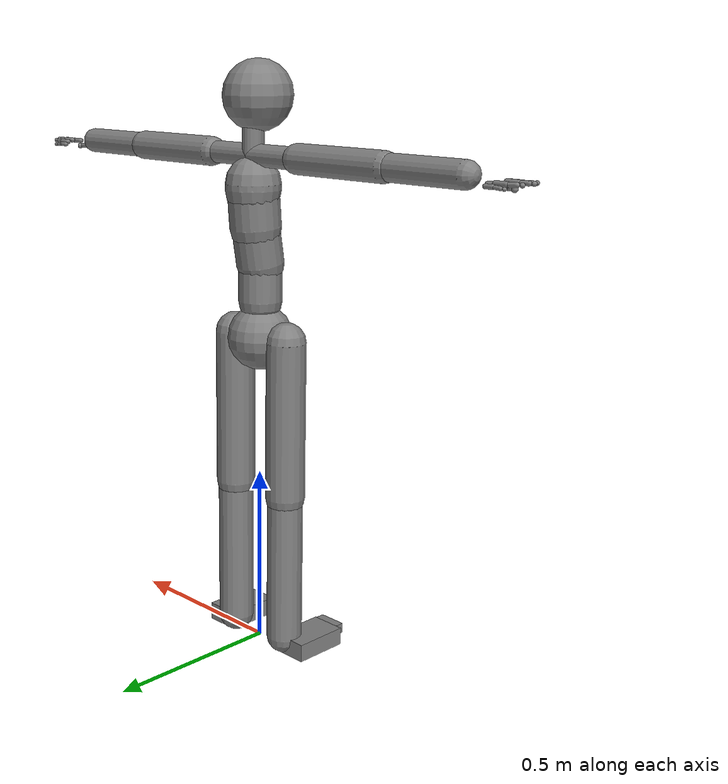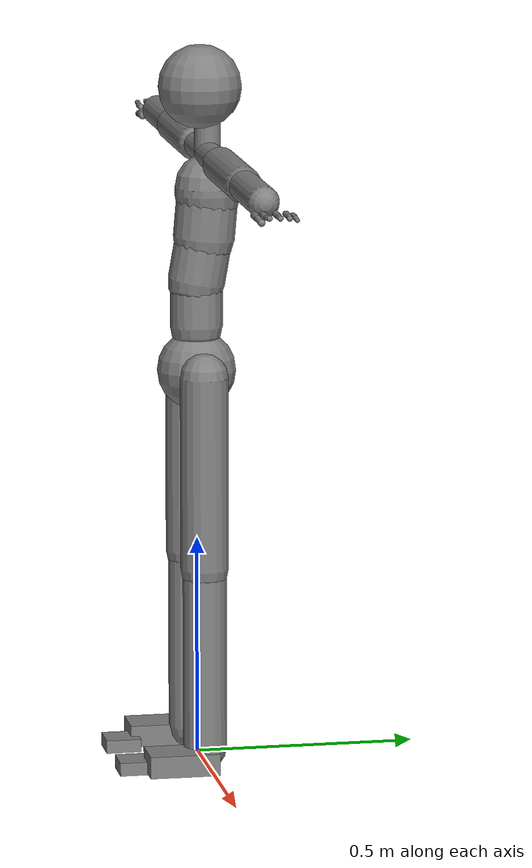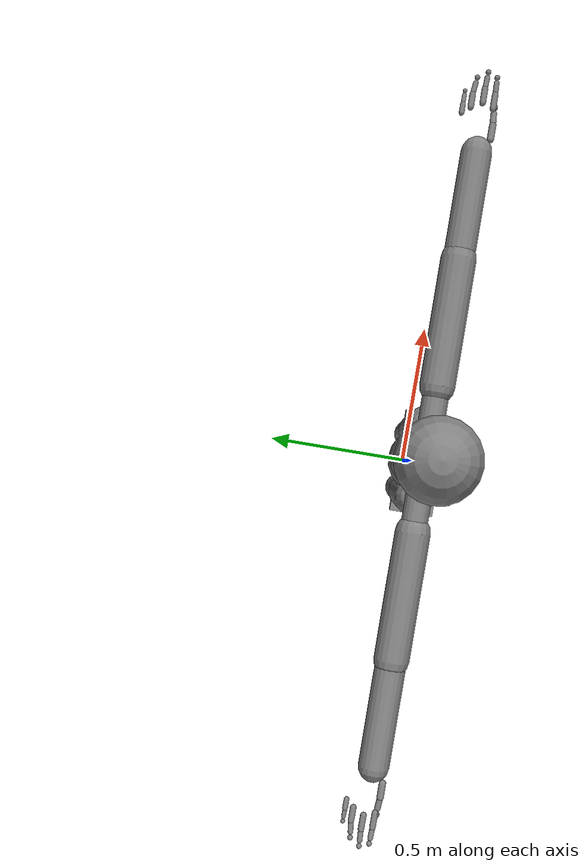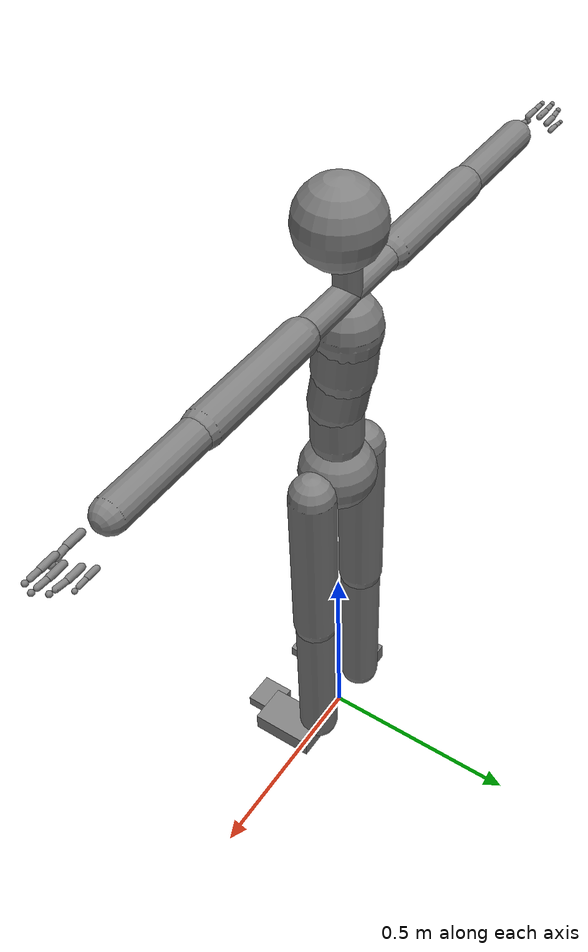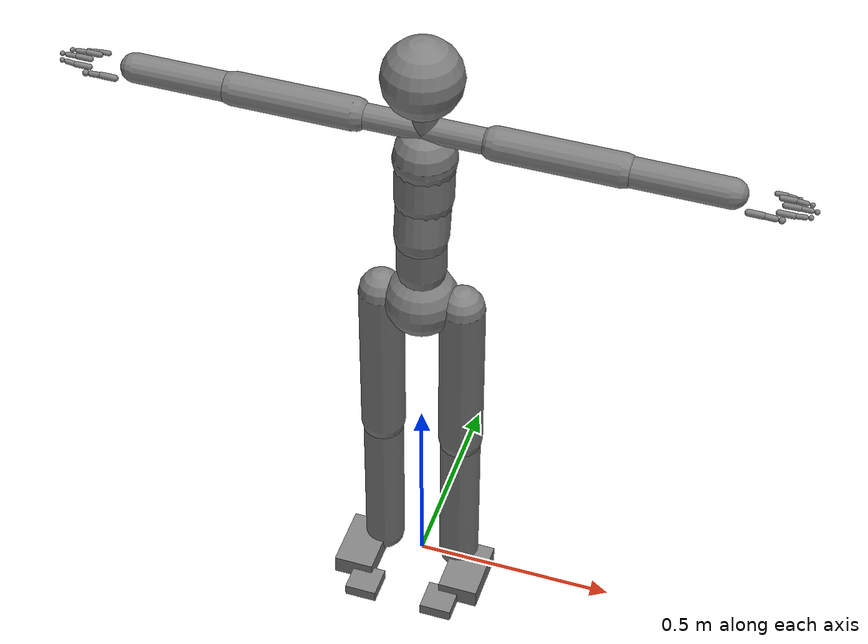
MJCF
<mujoco model="movinman_v3">
  <compiler angle="radian"/>

  <default>
    <motor ctrlrange="-1 1" ctrllimited="true"/>
    <default class="body">
      <geom condim="1" friction="1.0 0.05 0.05" solimp=".9 .99 .003" solref=".015 1"/>
      <joint limited="true" solimplimit="0 .99 .01" armature=".01"/>
    </default>
    <default class="hand">
      <geom condim="1" friction="1.0 0.05 0.05" solimp=".9 .99 .003" solref=".015 1"/>
      <joint limited="true" solimplimit="0 .99 .01" armature=".005"/>
    </default>
  </default>

  <worldbody>
    <body name="Hips" pos="0 0 0.8906" childclass="body">
      <freejoint name="root"/>
      <geom name="Hips" type="sphere" size=".09" density="1000"/>

      <!-- Spine chain -->
      <body name="Spine" pos="0 0 0.100574">
        <joint name="Spine_x" type="hinge" axis="1 0 0" range="-3.14159 3.14159"/>
        <joint name="Spine_y" type="hinge" axis="0 1 0" range="-3.14159 3.14159"/>
        <joint name="Spine_z" type="hinge" axis="0 0 1" range="-3.14159 3.14159"/>
        <geom name="Spine" type="capsule" fromto="0 0 0 0 0 0.101482" size="0.06" density="1000"/>

        <body name="Spine1" pos="0 0 0.101482">
          <joint name="Spine1_x" type="hinge" axis="1 0 0" range="-3.14159 3.14159"/>
          <joint name="Spine1_y" type="hinge" axis="0 1 0" range="-3.14159 3.14159"/>
          <joint name="Spine1_z" type="hinge" axis="0 0 1" range="-3.14159 3.14159"/>
          <geom name="Spine1" type="capsule" fromto="0 0 0 0 0.017544 0.099501" size="0.065" density="1000"/>

          <body name="Spine2" pos="0 0.017544 0.099501">
            <joint name="Spine2_x" type="hinge" axis="1 0 0" range="-3.14159 3.14159"/>
            <joint name="Spine2_y" type="hinge" axis="0 1 0" range="-3.14159 3.14159"/>
            <joint name="Spine2_z" type="hinge" axis="0 0 1" range="-3.14159 3.14159"/>
            <geom name="Spine2" type="capsule" fromto="0 0 0 0 0.008805 0.100647" size="0.07" density="1000"/>

            <body name="Spine3" pos="0 0.008805 0.100647">
              <joint name="Spine3_x" type="hinge" axis="1 0 0" range="-3.14159 3.14159"/>
              <joint name="Spine3_y" type="hinge" axis="0 1 0" range="-3.14159 3.14159"/>
              <joint name="Spine3_z" type="hinge" axis="0 0 1" range="-3.14159 3.14159"/>
              <geom name="Spine3" type="capsule" fromto="0 0 0 0 0 0.015928" size="0.075" density="1000"/>

              <!-- Neck/Head -->
              <body name="Neck" pos="0 0 0.090928">
                <joint name="Neck_x" type="hinge" axis="1 0 0" range="-3.14159 3.14159"/>
                <joint name="Neck_y" type="hinge" axis="0 1 0" range="-3.14159 3.14159"/>
                <joint name="Neck_z" type="hinge" axis="0 0 1" range="-3.14159 3.14159"/>
                <geom name="Neck" type="capsule" fromto="0 0 0 0 0 0.085869" size=".03" density="1000"/>

                <body name="Neck1" pos="0 0 0.085869">
                  <joint name="Neck1_x" type="hinge" axis="1 0 0" range="-3.14159 3.14159"/>
                  <joint name="Neck1_y" type="hinge" axis="0 1 0" range="-3.14159 3.14159"/>
                  <joint name="Neck1_z" type="hinge" axis="0 0 1" range="-3.14159 3.14159"/>
                  <geom name="Neck1" type="capsule" fromto="0 0 0 0 -0.016945 0.043697" size=".03" density="1000"/>

                  <body name="Head" pos="0 -0.016945 0.043697">
                    <joint name="Head_x" type="hinge" axis="1 0 0" range="-3.14159 3.14159"/>
                    <joint name="Head_y" type="hinge" axis="0 1 0" range="-3.14159 3.14159"/>
                    <joint name="Head_z" type="hinge" axis="0 0 1" range="-3.14159 3.14159"/>
                    <geom name="Head" type="sphere" pos="0 0 0.023434" size=".095" density="1000"/>
                  </body>
                </body>
              </body>

              <!-- Right arm chain -->
              <body name="RightShoulder" pos="0 0 0.090928">
                <joint name="RightShoulder_x" type="hinge" axis="1 0 0" range="-3.14159 3.14159"/>
                <joint name="RightShoulder_y" type="hinge" axis="0 1 0" range="-3.14159 3.14159"/>
                <joint name="RightShoulder_z" type="hinge" axis="0 0 1" range="-3.14159 3.14159"/>
                <geom name="RightShoulder" type="capsule" fromto="0 0 0 -0.16468 0 0" size=".03" density="1000"/>

                <body name="RightArm" pos="-0.16468 0 0">
                  <joint name="RightArm_x" type="hinge" axis="1 0 0" range="-3.14159 3.14159"/>
                  <joint name="RightArm_y" type="hinge" axis="0 1 0" range="-3.14159 3.14159"/>
                  <joint name="RightArm_z" type="hinge" axis="0 0 1" range="-3.14159 3.14159"/>
                  <geom name="RightArm" type="capsule" fromto="0 0 0 -0.288998 0 0" size=".04" density="1000"/>

                  <body name="RightForeArm" pos="-0.288998 0 0">
                    <joint name="RightForeArm_x" type="hinge" axis="1 0 0" range="-3.14159 3.14159"/>
                    <joint name="RightForeArm_y" type="hinge" axis="0 1 0" range="-3.14159 3.14159"/>
                    <joint name="RightForeArm_z" type="hinge" axis="0 0 1" range="-3.14159 3.14159"/>
                    <geom name="RightForeArm" type="capsule" fromto="0 0 0 -0.240378 0 0" size=".035" density="1000"/>

                    <body name="RightHand" pos="-0.240378 0 0">
                      <joint name="RightHand_x" type="hinge" axis="1 0 0" range="-3.14159 3.14159"/>
                      <joint name="RightHand_y" type="hinge" axis="0 1 0" range="-3.14159 3.14159"/>
                      <joint name="RightHand_z" type="hinge" axis="0 0 1" range="-3.14159 3.14159"/>
                      <geom name="RightHand" type="sphere" size=".03" density="1000"/>

                      <!-- Right hand fingers -->
                      <body name="RightHandThumb1" pos="-0.041726 -0.027704 -0.020077" childclass="hand">
                        <joint name="RightHandThumb1_x" type="hinge" axis="1 0 0" range="-3.14159 3.14159"/>
                        <joint name="RightHandThumb1_y" type="hinge" axis="0 1 0" range="-3.14159 3.14159"/>
                        <joint name="RightHandThumb1_z" type="hinge" axis="0 0 1" range="-3.14159 3.14159"/>
                        <geom name="RightHandThumb1" type="capsule" fromto="0 0 0 -0.032269 -0.000022 0" size=".008" density="1000"/>

                        <body name="RightHandThumb2" pos="-0.032269 -0.000022 0">
                          <joint name="RightHandThumb2_x" type="hinge" axis="1 0 0" range="-3.14159 3.14159"/>
                          <joint name="RightHandThumb2_y" type="hinge" axis="0 1 0" range="-3.14159 3.14159"/>
                          <joint name="RightHandThumb2_z" type="hinge" axis="0 0 1" range="-3.14159 3.14159"/>
                          <geom name="RightHandThumb2" type="capsule" fromto="0 0 0 -0.027413 0.001777 -0.002918" size=".007" density="1000"/>

                          <body name="RightHandThumb3" pos="-0.027413 0.001777 -0.002918">
                            <joint name="RightHandThumb3_x" type="hinge" axis="1 0 0" range="-3.14159 3.14159"/>
                            <joint name="RightHandThumb3_y" type="hinge" axis="0 1 0" range="-3.14159 3.14159"/>
                            <joint name="RightHandThumb3_z" type="hinge" axis="0 0 1" range="-3.14159 3.14159"/>
                            <geom name="RightHandThumb3" type="sphere" pos="-0.013706 0.000888 -0.001459" size=".008" density="1000"/>
                          </body>
                        </body>
                      </body>

                      <body name="RightHandIndex1" pos="-0.106087 -0.021057 -0.008585" childclass="hand">
                        <joint name="RightHandIndex1_x" type="hinge" axis="1 0 0" range="-3.14159 3.14159"/>
                        <joint name="RightHandIndex1_y" type="hinge" axis="0 1 0" range="-3.14159 3.14159"/>
                        <joint name="RightHandIndex1_z" type="hinge" axis="0 0 1" range="-3.14159 3.14159"/>
                        <geom name="RightHandIndex1" type="capsule" fromto="0 0 0 -0.033573 0.000221 0" size=".007" density="1000"/>

                        <body name="RightHandIndex2" pos="-0.033573 0.000221 0">
                          <joint name="RightHandIndex2_x" type="hinge" axis="1 0 0" range="-3.14159 3.14159"/>
                          <joint name="RightHandIndex2_y" type="hinge" axis="0 1 0" range="-3.14159 3.14159"/>
                          <joint name="RightHandIndex2_z" type="hinge" axis="0 0 1" range="-3.14159 3.14159"/>
                          <geom name="RightHandIndex2" type="capsule" fromto="0 0 0 -0.023509 0.001179 0.00164" size=".006" density="1000"/>

                          <body name="RightHandIndex3" pos="-0.023509 0.001179 0.00164">
                            <joint name="RightHandIndex3_x" type="hinge" axis="1 0 0" range="-3.14159 3.14159"/>
                            <joint name="RightHandIndex3_y" type="hinge" axis="0 1 0" range="-3.14159 3.14159"/>
                            <joint name="RightHandIndex3_z" type="hinge" axis="0 0 1" range="-3.14159 3.14159"/>
                            <geom name="RightHandIndex3" type="sphere" pos="-0.011754 0.000589 0.00082" size=".006" density="1000"/>
                          </body>
                        </body>
                      </body>

                      <body name="RightHandMiddle1" pos="-0.11422 0.003961 -0.005851" childclass="hand">
                        <joint name="RightHandMiddle1_x" type="hinge" axis="1 0 0" range="-3.14159 3.14159"/>
                        <joint name="RightHandMiddle1_y" type="hinge" axis="0 1 0" range="-3.14159 3.14159"/>
                        <joint name="RightHandMiddle1_z" type="hinge" axis="0 0 1" range="-3.14159 3.14159"/>
                        <geom name="RightHandMiddle1" type="capsule" fromto="0 0 0 -0.032162 0.000195 0" size=".007" density="1000"/>

                        <body name="RightHandMiddle2" pos="-0.032162 0.000195 0">
                          <joint name="RightHandMiddle2_x" type="hinge" axis="1 0 0" range="-3.14159 3.14159"/>
                          <joint name="RightHandMiddle2_y" type="hinge" axis="0 1 0" range="-3.14159 3.14159"/>
                          <joint name="RightHandMiddle2_z" type="hinge" axis="0 0 1" range="-3.14159 3.14159"/>
                          <geom name="RightHandMiddle2" type="capsule" fromto="0 0 0 -0.024862 -0.001192 0.000421" size=".006" density="1000"/>

                          <body name="RightHandMiddle3" pos="-0.024862 -0.001192 0.000421">
                            <joint name="RightHandMiddle3_x" type="hinge" axis="1 0 0" range="-3.14159 3.14159"/>
                            <joint name="RightHandMiddle3_y" type="hinge" axis="0 1 0" range="-3.14159 3.14159"/>
                            <joint name="RightHandMiddle3_z" type="hinge" axis="0 0 1" range="-3.14159 3.14159"/>
                            <geom name="RightHandMiddle3" type="sphere" pos="-0.012431 -0.000596 0.00021" size=".006" density="1000"/>
                          </body>
                        </body>
                      </body>

                      <body name="RightHandRing1" pos="-0.101918 0.028942 -0.008948" childclass="hand">
                        <joint name="RightHandRing1_x" type="hinge" axis="1 0 0" range="-3.14159 3.14159"/>
                        <joint name="RightHandRing1_y" type="hinge" axis="0 1 0" range="-3.14159 3.14159"/>
                        <joint name="RightHandRing1_z" type="hinge" axis="0 0 1" range="-3.14159 3.14159"/>
                        <geom name="RightHandRing1" type="capsule" fromto="0 0 0 -0.030022 0.000157 0" size=".007" density="1000"/>

                        <body name="RightHandRing2" pos="-0.030022 0.000157 0">
                          <joint name="RightHandRing2_x" type="hinge" axis="1 0 0" range="-3.14159 3.14159"/>
                          <joint name="RightHandRing2_y" type="hinge" axis="0 1 0" range="-3.14159 3.14159"/>
                          <joint name="RightHandRing2_z" type="hinge" axis="0 0 1" range="-3.14159 3.14159"/>
                          <geom name="RightHandRing2" type="capsule" fromto="0 0 0 -0.024872 -0.002786 0.000639" size=".006" density="1000"/>

                          <body name="RightHandRing3" pos="-0.024872 -0.002786 0.000639">
                            <joint name="RightHandRing3_x" type="hinge" axis="1 0 0" range="-3.14159 3.14159"/>
                            <joint name="RightHandRing3_y" type="hinge" axis="0 1 0" range="-3.14159 3.14159"/>
                            <joint name="RightHandRing3_z" type="hinge" axis="0 0 1" range="-3.14159 3.14159"/>
                            <geom name="RightHandRing3" type="sphere" pos="-0.012436 -0.001393 0.000319" size=".006" density="1000"/>
                          </body>
                        </body>
                      </body>

                      <body name="RightHandPinky1" pos="-0.088138 0.046496 -0.014748" childclass="hand">
                        <joint name="RightHandPinky1_x" type="hinge" axis="1 0 0" range="-3.14159 3.14159"/>
                        <joint name="RightHandPinky1_y" type="hinge" axis="0 1 0" range="-3.14159 3.14159"/>
                        <joint name="RightHandPinky1_z" type="hinge" axis="0 0 1" range="-3.14159 3.14159"/>
                        <geom name="RightHandPinky1" type="capsule" fromto="0 0 0 -0.0209 0.000098 0" size=".006" density="1000"/>

                        <body name="RightHandPinky2" pos="-0.0209 0.000098 0">
                          <joint name="RightHandPinky2_x" type="hinge" axis="1 0 0" range="-3.14159 3.14159"/>
                          <joint name="RightHandPinky2_y" type="hinge" axis="0 1 0" range="-3.14159 3.14159"/>
                          <joint name="RightHandPinky2_z" type="hinge" axis="0 0 1" range="-3.14159 3.14159"/>
                          <geom name="RightHandPinky2" type="capsule" fromto="0 0 0 -0.020099 0.000107 -0.001737" size=".005" density="1000"/>

                          <body name="RightHandPinky3" pos="-0.020099 0.000107 -0.001737">
                            <joint name="RightHandPinky3_x" type="hinge" axis="1 0 0" range="-3.14159 3.14159"/>
                            <joint name="RightHandPinky3_y" type="hinge" axis="0 1 0" range="-3.14159 3.14159"/>
                            <joint name="RightHandPinky3_z" type="hinge" axis="0 0 1" range="-3.14159 3.14159"/>
                            <geom name="RightHandPinky3" type="sphere" pos="-0.01005 0.000054 -0.000869" size=".005" density="1000"/>
                          </body>
                        </body>
                      </body>
                    </body>
                  </body>
                </body>
              </body>

              <!-- Left arm chain -->
              <body name="LeftShoulder" pos="0 0 0.090928">
                <joint name="LeftShoulder_x" type="hinge" axis="1 0 0" range="-3.14159 3.14159"/>
                <joint name="LeftShoulder_y" type="hinge" axis="0 1 0" range="-3.14159 3.14159"/>
                <joint name="LeftShoulder_z" type="hinge" axis="0 0 1" range="-3.14159 3.14159"/>
                <geom name="LeftShoulder" type="capsule" fromto="0 0 0 0.16468 0 0" size=".03" density="1000"/>

                <body name="LeftArm" pos="0.16468 0 0">
                  <joint name="LeftArm_x" type="hinge" axis="1 0 0" range="-3.14159 3.14159"/>
                  <joint name="LeftArm_y" type="hinge" axis="0 1 0" range="-3.14159 3.14159"/>
                  <joint name="LeftArm_z" type="hinge" axis="0 0 1" range="-3.14159 3.14159"/>
                  <geom name="LeftArm" type="capsule" fromto="0 0 0 0.288999 0 0" size=".04" density="1000"/>

                  <body name="LeftForeArm" pos="0.288999 0 0">
                    <joint name="LeftForeArm_x" type="hinge" axis="1 0 0" range="-3.14159 3.14159"/>
                    <joint name="LeftForeArm_y" type="hinge" axis="0 1 0" range="-3.14159 3.14159"/>
                    <joint name="LeftForeArm_z" type="hinge" axis="0 0 1" range="-3.14159 3.14159"/>
                    <geom name="LeftForeArm" type="capsule" fromto="0 0 0 0.240378 0 0" size=".035" density="1000"/>

                    <body name="LeftHand" pos="0.240378 0 0">
                      <joint name="LeftHand_x" type="hinge" axis="1 0 0" range="-3.14159 3.14159"/>
                      <joint name="LeftHand_y" type="hinge" axis="0 1 0" range="-3.14159 3.14159"/>
                      <joint name="LeftHand_z" type="hinge" axis="0 0 1" range="-3.14159 3.14159"/>
                      <geom name="LeftHand" type="sphere" size=".03" density="1000"/>

                      <!-- Left hand fingers -->
                      <body name="LeftHandThumb1" pos="0.041726 -0.027704 -0.020077" childclass="hand">
                        <joint name="LeftHandThumb1_x" type="hinge" axis="1 0 0" range="-3.14159 3.14159"/>
                        <joint name="LeftHandThumb1_y" type="hinge" axis="0 1 0" range="-3.14159 3.14159"/>
                        <joint name="LeftHandThumb1_z" type="hinge" axis="0 0 1" range="-3.14159 3.14159"/>
                        <geom name="LeftHandThumb1" type="capsule" fromto="0 0 0 0.032269 -0.000022 0" size=".008" density="1000"/>

                        <body name="LeftHandThumb2" pos="0.032269 -0.000022 0">
                          <joint name="LeftHandThumb2_x" type="hinge" axis="1 0 0" range="-3.14159 3.14159"/>
                          <joint name="LeftHandThumb2_y" type="hinge" axis="0 1 0" range="-3.14159 3.14159"/>
                          <joint name="LeftHandThumb2_z" type="hinge" axis="0 0 1" range="-3.14159 3.14159"/>
                          <geom name="LeftHandThumb2" type="capsule" fromto="0 0 0 0.027416 0.00173 -0.002918" size=".007" density="1000"/>

                          <body name="LeftHandThumb3" pos="0.027416 0.00173 -0.002918">
                            <joint name="LeftHandThumb3_x" type="hinge" axis="1 0 0" range="-3.14159 3.14159"/>
                            <joint name="LeftHandThumb3_y" type="hinge" axis="0 1 0" range="-3.14159 3.14159"/>
                            <joint name="LeftHandThumb3_z" type="hinge" axis="0 0 1" range="-3.14159 3.14159"/>
                            <geom name="LeftHandThumb3" type="sphere" pos="0.013708 0.000865 -0.001459" size=".008" density="1000"/>
                          </body>
                        </body>
                      </body>

                      <body name="LeftHandIndex1" pos="0.106087 -0.021057 -0.008585" childclass="hand">
                        <joint name="LeftHandIndex1_x" type="hinge" axis="1 0 0" range="-3.14159 3.14159"/>
                        <joint name="LeftHandIndex1_y" type="hinge" axis="0 1 0" range="-3.14159 3.14159"/>
                        <joint name="LeftHandIndex1_z" type="hinge" axis="0 0 1" range="-3.14159 3.14159"/>
                        <geom name="LeftHandIndex1" type="capsule" fromto="0 0 0 0.033573 0.000221 0" size=".007" density="1000"/>

                        <body name="LeftHandIndex2" pos="0.033573 0.000221 0">
                          <joint name="LeftHandIndex2_x" type="hinge" axis="1 0 0" range="-3.14159 3.14159"/>
                          <joint name="LeftHandIndex2_y" type="hinge" axis="0 1 0" range="-3.14159 3.14159"/>
                          <joint name="LeftHandIndex2_z" type="hinge" axis="0 0 1" range="-3.14159 3.14159"/>
                          <geom name="LeftHandIndex2" type="capsule" fromto="0 0 0 0.023509 0.001179 0.00164" size=".006" density="1000"/>

                          <body name="LeftHandIndex3" pos="0.023509 0.001179 0.00164">
                            <joint name="LeftHandIndex3_x" type="hinge" axis="1 0 0" range="-3.14159 3.14159"/>
                            <joint name="LeftHandIndex3_y" type="hinge" axis="0 1 0" range="-3.14159 3.14159"/>
                            <joint name="LeftHandIndex3_z" type="hinge" axis="0 0 1" range="-3.14159 3.14159"/>
                            <geom name="LeftHandIndex3" type="sphere" pos="0.011754 0.000589 0.00082" size=".006" density="1000"/>
                          </body>
                        </body>
                      </body>

                      <body name="LeftHandMiddle1" pos="0.11422 0.003961 -0.005851" childclass="hand">
                        <joint name="LeftHandMiddle1_x" type="hinge" axis="1 0 0" range="-3.14159 3.14159"/>
                        <joint name="LeftHandMiddle1_y" type="hinge" axis="0 1 0" range="-3.14159 3.14159"/>
                        <joint name="LeftHandMiddle1_z" type="hinge" axis="0 0 1" range="-3.14159 3.14159"/>
                        <geom name="LeftHandMiddle1" type="capsule" fromto="0 0 0 0.032162 0.000195 0.000001" size=".007" density="1000"/>

                        <body name="LeftHandMiddle2" pos="0.032162 0.000195 0.000001">
                          <joint name="LeftHandMiddle2_x" type="hinge" axis="1 0 0" range="-3.14159 3.14159"/>
                          <joint name="LeftHandMiddle2_y" type="hinge" axis="0 1 0" range="-3.14159 3.14159"/>
                          <joint name="LeftHandMiddle2_z" type="hinge" axis="0 0 1" range="-3.14159 3.14159"/>
                          <geom name="LeftHandMiddle2" type="capsule" fromto="0 0 0 0.024862 -0.001192 0.000421" size=".006" density="1000"/>

                          <body name="LeftHandMiddle3" pos="0.024862 -0.001192 0.000421">
                            <joint name="LeftHandMiddle3_x" type="hinge" axis="1 0 0" range="-3.14159 3.14159"/>
                            <joint name="LeftHandMiddle3_y" type="hinge" axis="0 1 0" range="-3.14159 3.14159"/>
                            <joint name="LeftHandMiddle3_z" type="hinge" axis="0 0 1" range="-3.14159 3.14159"/>
                            <geom name="LeftHandMiddle3" type="sphere" pos="0.012431 -0.000596 0.00021" size=".006" density="1000"/>
                          </body>
                        </body>
                      </body>

                      <body name="LeftHandRing1" pos="0.101918 0.028942 -0.008948" childclass="hand">
                        <joint name="LeftHandRing1_x" type="hinge" axis="1 0 0" range="-3.14159 3.14159"/>
                        <joint name="LeftHandRing1_y" type="hinge" axis="0 1 0" range="-3.14159 3.14159"/>
                        <joint name="LeftHandRing1_z" type="hinge" axis="0 0 1" range="-3.14159 3.14159"/>
                        <geom name="LeftHandRing1" type="capsule" fromto="0 0 0 0.030022 0.000157 0" size=".007" density="1000"/>

                        <body name="LeftHandRing2" pos="0.030022 0.000157 0">
                          <joint name="LeftHandRing2_x" type="hinge" axis="1 0 0" range="-3.14159 3.14159"/>
                          <joint name="LeftHandRing2_y" type="hinge" axis="0 1 0" range="-3.14159 3.14159"/>
                          <joint name="LeftHandRing2_z" type="hinge" axis="0 0 1" range="-3.14159 3.14159"/>
                          <geom name="LeftHandRing2" type="capsule" fromto="0 0 0 0.024872 -0.002786 0.000639" size=".006" density="1000"/>

                          <body name="LeftHandRing3" pos="0.024872 -0.002786 0.000639">
                            <joint name="LeftHandRing3_x" type="hinge" axis="1 0 0" range="-3.14159 3.14159"/>
                            <joint name="LeftHandRing3_y" type="hinge" axis="0 1 0" range="-3.14159 3.14159"/>
                            <joint name="LeftHandRing3_z" type="hinge" axis="0 0 1" range="-3.14159 3.14159"/>
                            <geom name="LeftHandRing3" type="sphere" pos="0.012436 -0.001393 0.000319" size=".006" density="1000"/>
                          </body>
                        </body>
                      </body>

                      <body name="LeftHandPinky1" pos="0.088138 0.046496 -0.014748" childclass="hand">
                        <joint name="LeftHandPinky1_x" type="hinge" axis="1 0 0" range="-3.14159 3.14159"/>
                        <joint name="LeftHandPinky1_y" type="hinge" axis="0 1 0" range="-3.14159 3.14159"/>
                        <joint name="LeftHandPinky1_z" type="hinge" axis="0 0 1" range="-3.14159 3.14159"/>
                        <geom name="LeftHandPinky1" type="capsule" fromto="0 0 0 0.0209 0.000098 0" size=".006" density="1000"/>

                        <body name="LeftHandPinky2" pos="0.0209 0.000098 0">
                          <joint name="LeftHandPinky2_x" type="hinge" axis="1 0 0" range="-3.14159 3.14159"/>
                          <joint name="LeftHandPinky2_y" type="hinge" axis="0 1 0" range="-3.14159 3.14159"/>
                          <joint name="LeftHandPinky2_z" type="hinge" axis="0 0 1" range="-3.14159 3.14159"/>
                          <geom name="LeftHandPinky2" type="capsule" fromto="0 0 0 0.020099 0.000107 -0.001738" size=".005" density="1000"/>

                          <body name="LeftHandPinky3" pos="0.020099 0.000107 -0.001738">
                            <joint name="LeftHandPinky3_x" type="hinge" axis="1 0 0" range="-3.14159 3.14159"/>
                            <joint name="LeftHandPinky3_y" type="hinge" axis="0 1 0" range="-3.14159 3.14159"/>
                            <joint name="LeftHandPinky3_z" type="hinge" axis="0 0 1" range="-3.14159 3.14159"/>
                            <geom name="LeftHandPinky3" type="sphere" pos="0.010049 0.000053 -0.000869" size=".005" density="1000"/>
                          </body>
                        </body>
                      </body>
                    </body>
                  </body>
                </body>
              </body>
            </body>
          </body>
        </body>
      </body>

      <!-- Right leg chain -->
      <body name="RightUpLeg" pos="-0.100517 0 0">
        <joint name="RightUpLeg_x" type="hinge" axis="1 0 0" range="-3.14159 3.14159"/>
        <joint name="RightUpLeg_y" type="hinge" axis="0 1 0" range="-3.14159 3.14159"/>
        <joint name="RightUpLeg_z" type="hinge" axis="0 0 1" range="-3.14159 3.14159"/>
        <geom name="RightUpLeg" type="capsule" fromto="0 0 0 0 0 -0.439779" size=".055" density="1000"/>

        <body name="RightLeg" pos="0 0 -0.439779">
          <joint name="RightLeg_x" type="hinge" axis="1 0 0" range="-3.14159 3.14159"/>
          <joint name="RightLeg_y" type="hinge" axis="0 1 0" range="-3.14159 3.14159"/>
          <joint name="RightLeg_z" type="hinge" axis="0 0 1" range="-3.14159 3.14159"/>
          <geom name="RightLeg" type="capsule" fromto="0 0 0 0 0 -0.417225" size=".05" density="1000"/>

          <body name="RightFoot" pos="0 0 -0.417225">
            <joint name="RightFoot_x" type="hinge" axis="1 0 0" range="-3.14159 3.14159"/>
            <joint name="RightFoot_y" type="hinge" axis="0 1 0" range="-3.14159 3.14159"/>
            <joint name="RightFoot_z" type="hinge" axis="0 0 1" range="-3.14159 3.14159"/>
            <geom name="RightFoot" type="box" pos="-0.04 -0.06 -0.02" size="0.05 0.08 0.025" density="1000"/>

            <body name="RightToeBase" pos="0 -0.131615 -0.033607">
              <joint name="RightToeBase_x" type="hinge" axis="1 0 0" range="-3.14159 3.14159"/>
              <joint name="RightToeBase_y" type="hinge" axis="0 1 0" range="-3.14159 3.14159"/>
              <joint name="RightToeBase_z" type="hinge" axis="0 0 1" range="-3.14159 3.14159"/>
              <geom name="RightToeBase" type="box" pos="0 -0.03 0" size="0.04 0.04 0.015" density="1000"/>
            </body>
          </body>
        </body>
      </body>

      <!-- Left leg chain -->
      <body name="LeftUpLeg" pos="0.100517 0 0">
        <joint name="LeftUpLeg_x" type="hinge" axis="1 0 0" range="-3.14159 3.14159"/>
        <joint name="LeftUpLeg_y" type="hinge" axis="0 1 0" range="-3.14159 3.14159"/>
        <joint name="LeftUpLeg_z" type="hinge" axis="0 0 1" range="-3.14159 3.14159"/>
        <geom name="LeftUpLeg" type="capsule" fromto="0 0 0 0 0 -0.439779" size=".055" density="1000"/>

        <body name="LeftLeg" pos="0 0 -0.439779">
          <joint name="LeftLeg_x" type="hinge" axis="1 0 0" range="-3.14159 3.14159"/>
          <joint name="LeftLeg_y" type="hinge" axis="0 1 0" range="-3.14159 3.14159"/>
          <joint name="LeftLeg_z" type="hinge" axis="0 0 1" range="-3.14159 3.14159"/>
          <geom name="LeftLeg" type="capsule" fromto="0 0 0 0 0 -0.417225" size=".05" density="1000"/>

          <body name="LeftFoot" pos="0 0 -0.417225">
            <joint name="LeftFoot_x" type="hinge" axis="1 0 0" range="-3.14159 3.14159"/>
            <joint name="LeftFoot_y" type="hinge" axis="0 1 0" range="-3.14159 3.14159"/>
            <joint name="LeftFoot_z" type="hinge" axis="0 0 1" range="-3.14159 3.14159"/>
            <geom name="LeftFoot" type="box" pos="0.04 -0.06 -0.02" size="0.05 0.08 0.025" density="1000"/>

            <body name="LeftToeBase" pos="0 -0.131615 -0.033607">
              <joint name="LeftToeBase_x" type="hinge" axis="1 0 0" range="-3.14159 3.14159"/>
              <joint name="LeftToeBase_y" type="hinge" axis="0 1 0" range="-3.14159 3.14159"/>
              <joint name="LeftToeBase_z" type="hinge" axis="0 0 1" range="-3.14159 3.14159"/>
              <geom name="LeftToeBase" type="box" pos="0 -0.03 0" size="0.04 0.04 0.015" density="1000"/>
            </body>
          </body>
        </body>
      </body>
    </body>
  </worldbody>

  <actuator>
    <motor name="Spine_x" gear="200" joint="Spine_x"/>
    <motor name="Spine_y" gear="200" joint="Spine_y"/>
    <motor name="Spine_z" gear="200" joint="Spine_z"/>
    <motor name="Spine1_x" gear="200" joint="Spine1_x"/>
    <motor name="Spine1_y" gear="200" joint="Spine1_y"/>
    <motor name="Spine1_z" gear="200" joint="Spine1_z"/>
    <motor name="Spine2_x" gear="200" joint="Spine2_x"/>
    <motor name="Spine2_y" gear="200" joint="Spine2_y"/>
    <motor name="Spine2_z" gear="200" joint="Spine2_z"/>
    <motor name="Spine3_x" gear="200" joint="Spine3_x"/>
    <motor name="Spine3_y" gear="200" joint="Spine3_y"/>
    <motor name="Spine3_z" gear="200" joint="Spine3_z"/>
    <motor name="Neck_x" gear="50" joint="Neck_x"/>
    <motor name="Neck_y" gear="50" joint="Neck_y"/>
    <motor name="Neck_z" gear="50" joint="Neck_z"/>
    <motor name="Neck1_x" gear="50" joint="Neck1_x"/>
    <motor name="Neck1_y" gear="50" joint="Neck1_y"/>
    <motor name="Neck1_z" gear="50" joint="Neck1_z"/>
    <motor name="Head_x" gear="50" joint="Head_x"/>
    <motor name="Head_y" gear="50" joint="Head_y"/>
    <motor name="Head_z" gear="50" joint="Head_z"/>
    <motor name="RightShoulder_x" gear="100" joint="RightShoulder_x"/>
    <motor name="RightShoulder_y" gear="100" joint="RightShoulder_y"/>
    <motor name="RightShoulder_z" gear="100" joint="RightShoulder_z"/>
    <motor name="RightArm_x" gear="100" joint="RightArm_x"/>
    <motor name="RightArm_y" gear="100" joint="RightArm_y"/>
    <motor name="RightArm_z" gear="100" joint="RightArm_z"/>
    <motor name="RightForeArm_x" gear="70" joint="RightForeArm_x"/>
    <motor name="RightForeArm_y" gear="70" joint="RightForeArm_y"/>
    <motor name="RightForeArm_z" gear="70" joint="RightForeArm_z"/>
    <motor name="RightHand_x" gear="50" joint="RightHand_x"/>
    <motor name="RightHand_y" gear="50" joint="RightHand_y"/>
    <motor name="RightHand_z" gear="50" joint="RightHand_z"/>
    <motor name="RightHandThumb1_x" gear="10" joint="RightHandThumb1_x"/>
    <motor name="RightHandThumb1_y" gear="10" joint="RightHandThumb1_y"/>
    <motor name="RightHandThumb1_z" gear="10" joint="RightHandThumb1_z"/>
    <motor name="RightHandThumb2_x" gear="10" joint="RightHandThumb2_x"/>
    <motor name="RightHandThumb2_y" gear="10" joint="RightHandThumb2_y"/>
    <motor name="RightHandThumb2_z" gear="10" joint="RightHandThumb2_z"/>
    <motor name="RightHandThumb3_x" gear="10" joint="RightHandThumb3_x"/>
    <motor name="RightHandThumb3_y" gear="10" joint="RightHandThumb3_y"/>
    <motor name="RightHandThumb3_z" gear="10" joint="RightHandThumb3_z"/>
    <motor name="RightHandIndex1_x" gear="10" joint="RightHandIndex1_x"/>
    <motor name="RightHandIndex1_y" gear="10" joint="RightHandIndex1_y"/>
    <motor name="RightHandIndex1_z" gear="10" joint="RightHandIndex1_z"/>
    <motor name="RightHandIndex2_x" gear="10" joint="RightHandIndex2_x"/>
    <motor name="RightHandIndex2_y" gear="10" joint="RightHandIndex2_y"/>
    <motor name="RightHandIndex2_z" gear="10" joint="RightHandIndex2_z"/>
    <motor name="RightHandIndex3_x" gear="10" joint="RightHandIndex3_x"/>
    <motor name="RightHandIndex3_y" gear="10" joint="RightHandIndex3_y"/>
    <motor name="RightHandIndex3_z" gear="10" joint="RightHandIndex3_z"/>
    <motor name="RightHandMiddle1_x" gear="10" joint="RightHandMiddle1_x"/>
    <motor name="RightHandMiddle1_y" gear="10" joint="RightHandMiddle1_y"/>
    <motor name="RightHandMiddle1_z" gear="10" joint="RightHandMiddle1_z"/>
    <motor name="RightHandMiddle2_x" gear="10" joint="RightHandMiddle2_x"/>
    <motor name="RightHandMiddle2_y" gear="10" joint="RightHandMiddle2_y"/>
    <motor name="RightHandMiddle2_z" gear="10" joint="RightHandMiddle2_z"/>
    <motor name="RightHandMiddle3_x" gear="10" joint="RightHandMiddle3_x"/>
    <motor name="RightHandMiddle3_y" gear="10" joint="RightHandMiddle3_y"/>
    <motor name="RightHandMiddle3_z" gear="10" joint="RightHandMiddle3_z"/>
    <motor name="RightHandRing1_x" gear="10" joint="RightHandRing1_x"/>
    <motor name="RightHandRing1_y" gear="10" joint="RightHandRing1_y"/>
    <motor name="RightHandRing1_z" gear="10" joint="RightHandRing1_z"/>
    <motor name="RightHandRing2_x" gear="10" joint="RightHandRing2_x"/>
    <motor name="RightHandRing2_y" gear="10" joint="RightHandRing2_y"/>
    <motor name="RightHandRing2_z" gear="10" joint="RightHandRing2_z"/>
    <motor name="RightHandRing3_x" gear="10" joint="RightHandRing3_x"/>
    <motor name="RightHandRing3_y" gear="10" joint="RightHandRing3_y"/>
    <motor name="RightHandRing3_z" gear="10" joint="RightHandRing3_z"/>
    <motor name="RightHandPinky1_x" gear="10" joint="RightHandPinky1_x"/>
    <motor name="RightHandPinky1_y" gear="10" joint="RightHandPinky1_y"/>
    <motor name="RightHandPinky1_z" gear="10" joint="RightHandPinky1_z"/>
    <motor name="RightHandPinky2_x" gear="10" joint="RightHandPinky2_x"/>
    <motor name="RightHandPinky2_y" gear="10" joint="RightHandPinky2_y"/>
    <motor name="RightHandPinky2_z" gear="10" joint="RightHandPinky2_z"/>
    <motor name="RightHandPinky3_x" gear="10" joint="RightHandPinky3_x"/>
    <motor name="RightHandPinky3_y" gear="10" joint="RightHandPinky3_y"/>
    <motor name="RightHandPinky3_z" gear="10" joint="RightHandPinky3_z"/>
    <motor name="LeftShoulder_x" gear="100" joint="LeftShoulder_x"/>
    <motor name="LeftShoulder_y" gear="100" joint="LeftShoulder_y"/>
    <motor name="LeftShoulder_z" gear="100" joint="LeftShoulder_z"/>
    <motor name="LeftArm_x" gear="100" joint="LeftArm_x"/>
    <motor name="LeftArm_y" gear="100" joint="LeftArm_y"/>
    <motor name="LeftArm_z" gear="100" joint="LeftArm_z"/>
    <motor name="LeftForeArm_x" gear="70" joint="LeftForeArm_x"/>
    <motor name="LeftForeArm_y" gear="70" joint="LeftForeArm_y"/>
    <motor name="LeftForeArm_z" gear="70" joint="LeftForeArm_z"/>
    <motor name="LeftHand_x" gear="50" joint="LeftHand_x"/>
    <motor name="LeftHand_y" gear="50" joint="LeftHand_y"/>
    <motor name="LeftHand_z" gear="50" joint="LeftHand_z"/>
    <motor name="LeftHandThumb1_x" gear="10" joint="LeftHandThumb1_x"/>
    <motor name="LeftHandThumb1_y" gear="10" joint="LeftHandThumb1_y"/>
    <motor name="LeftHandThumb1_z" gear="10" joint="LeftHandThumb1_z"/>
    <motor name="LeftHandThumb2_x" gear="10" joint="LeftHandThumb2_x"/>
    <motor name="LeftHandThumb2_y" gear="10" joint="LeftHandThumb2_y"/>
    <motor name="LeftHandThumb2_z" gear="10" joint="LeftHandThumb2_z"/>
    <motor name="LeftHandThumb3_x" gear="10" joint="LeftHandThumb3_x"/>
    <motor name="LeftHandThumb3_y" gear="10" joint="LeftHandThumb3_y"/>
    <motor name="LeftHandThumb3_z" gear="10" joint="LeftHandThumb3_z"/>
    <motor name="LeftHandIndex1_x" gear="10" joint="LeftHandIndex1_x"/>
    <motor name="LeftHandIndex1_y" gear="10" joint="LeftHandIndex1_y"/>
    <motor name="LeftHandIndex1_z" gear="10" joint="LeftHandIndex1_z"/>
    <motor name="LeftHandIndex2_x" gear="10" joint="LeftHandIndex2_x"/>
    <motor name="LeftHandIndex2_y" gear="10" joint="LeftHandIndex2_y"/>
    <motor name="LeftHandIndex2_z" gear="10" joint="LeftHandIndex2_z"/>
    <motor name="LeftHandIndex3_x" gear="10" joint="LeftHandIndex3_x"/>
    <motor name="LeftHandIndex3_y" gear="10" joint="LeftHandIndex3_y"/>
    <motor name="LeftHandIndex3_z" gear="10" joint="LeftHandIndex3_z"/>
    <motor name="LeftHandMiddle1_x" gear="10" joint="LeftHandMiddle1_x"/>
    <motor name="LeftHandMiddle1_y" gear="10" joint="LeftHandMiddle1_y"/>
    <motor name="LeftHandMiddle1_z" gear="10" joint="LeftHandMiddle1_z"/>
    <motor name="LeftHandMiddle2_x" gear="10" joint="LeftHandMiddle2_x"/>
    <motor name="LeftHandMiddle2_y" gear="10" joint="LeftHandMiddle2_y"/>
    <motor name="LeftHandMiddle2_z" gear="10" joint="LeftHandMiddle2_z"/>
    <motor name="LeftHandMiddle3_x" gear="10" joint="LeftHandMiddle3_x"/>
    <motor name="LeftHandMiddle3_y" gear="10" joint="LeftHandMiddle3_y"/>
    <motor name="LeftHandMiddle3_z" gear="10" joint="LeftHandMiddle3_z"/>
    <motor name="LeftHandRing1_x" gear="10" joint="LeftHandRing1_x"/>
    <motor name="LeftHandRing1_y" gear="10" joint="LeftHandRing1_y"/>
    <motor name="LeftHandRing1_z" gear="10" joint="LeftHandRing1_z"/>
    <motor name="LeftHandRing2_x" gear="10" joint="LeftHandRing2_x"/>
    <motor name="LeftHandRing2_y" gear="10" joint="LeftHandRing2_y"/>
    <motor name="LeftHandRing2_z" gear="10" joint="LeftHandRing2_z"/>
    <motor name="LeftHandRing3_x" gear="10" joint="LeftHandRing3_x"/>
    <motor name="LeftHandRing3_y" gear="10" joint="LeftHandRing3_y"/>
    <motor name="LeftHandRing3_z" gear="10" joint="LeftHandRing3_z"/>
    <motor name="LeftHandPinky1_x" gear="10" joint="LeftHandPinky1_x"/>
    <motor name="LeftHandPinky1_y" gear="10" joint="LeftHandPinky1_y"/>
    <motor name="LeftHandPinky1_z" gear="10" joint="LeftHandPinky1_z"/>
    <motor name="LeftHandPinky2_x" gear="10" joint="LeftHandPinky2_x"/>
    <motor name="LeftHandPinky2_y" gear="10" joint="LeftHandPinky2_y"/>
    <motor name="LeftHandPinky2_z" gear="10" joint="LeftHandPinky2_z"/>
    <motor name="LeftHandPinky3_x" gear="10" joint="LeftHandPinky3_x"/>
    <motor name="LeftHandPinky3_y" gear="10" joint="LeftHandPinky3_y"/>
    <motor name="LeftHandPinky3_z" gear="10" joint="LeftHandPinky3_z"/>
    <motor name="RightUpLeg_x" gear="200" joint="RightUpLeg_x"/>
    <motor name="RightUpLeg_y" gear="200" joint="RightUpLeg_y"/>
    <motor name="RightUpLeg_z" gear="200" joint="RightUpLeg_z"/>
    <motor name="RightLeg_x" gear="150" joint="RightLeg_x"/>
    <motor name="RightLeg_y" gear="150" joint="RightLeg_y"/>
    <motor name="RightLeg_z" gear="150" joint="RightLeg_z"/>
    <motor name="RightFoot_x" gear="90" joint="RightFoot_x"/>
    <motor name="RightFoot_y" gear="90" joint="RightFoot_y"/>
    <motor name="RightFoot_z" gear="90" joint="RightFoot_z"/>
    <motor name="RightToeBase_x" gear="50" joint="RightToeBase_x"/>
    <motor name="RightToeBase_y" gear="50" joint="RightToeBase_y"/>
    <motor name="RightToeBase_z" gear="50" joint="RightToeBase_z"/>
    <motor name="LeftUpLeg_x" gear="200" joint="LeftUpLeg_x"/>
    <motor name="LeftUpLeg_y" gear="200" joint="LeftUpLeg_y"/>
    <motor name="LeftUpLeg_z" gear="200" joint="LeftUpLeg_z"/>
    <motor name="LeftLeg_x" gear="150" joint="LeftLeg_x"/>
    <motor name="LeftLeg_y" gear="150" joint="LeftLeg_y"/>
    <motor name="LeftLeg_z" gear="150" joint="LeftLeg_z"/>
    <motor name="LeftFoot_x" gear="90" joint="LeftFoot_x"/>
    <motor name="LeftFoot_y" gear="90" joint="LeftFoot_y"/>
    <motor name="LeftFoot_z" gear="90" joint="LeftFoot_z"/>
    <motor name="LeftToeBase_x" gear="50" joint="LeftToeBase_x"/>
    <motor name="LeftToeBase_y" gear="50" joint="LeftToeBase_y"/>
    <motor name="LeftToeBase_z" gear="50" joint="LeftToeBase_z"/>
  </actuator>
</mujoco>
